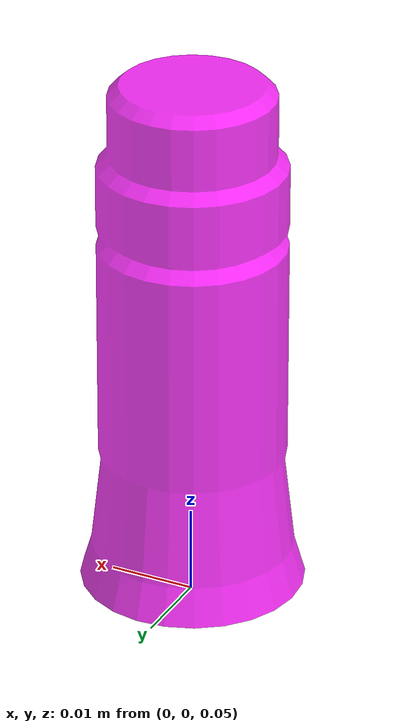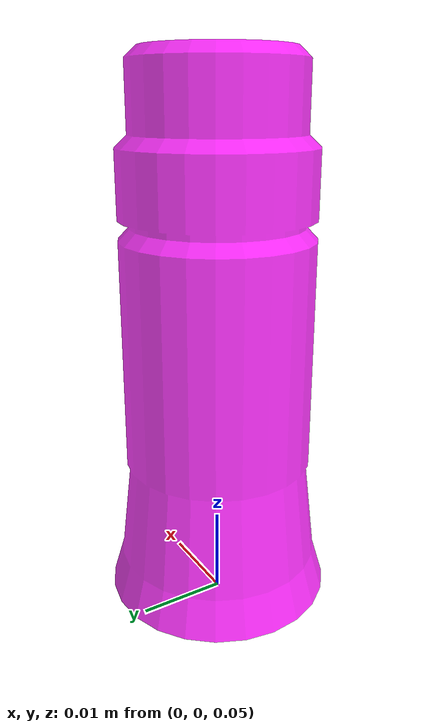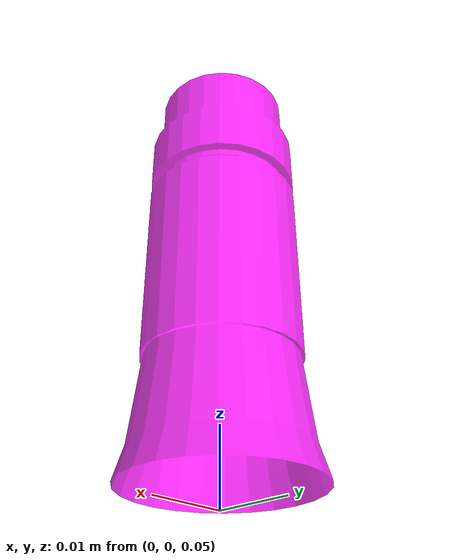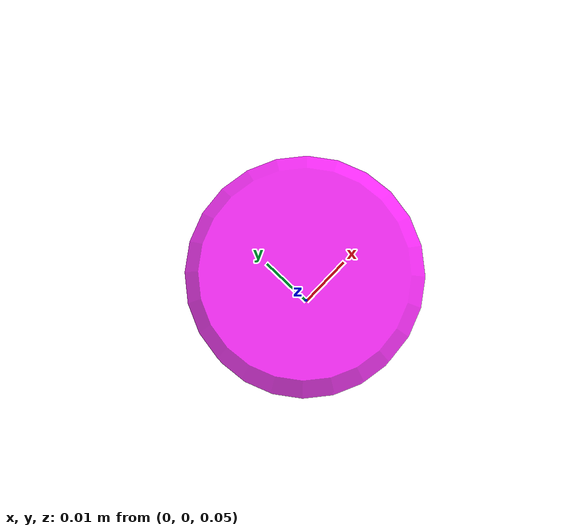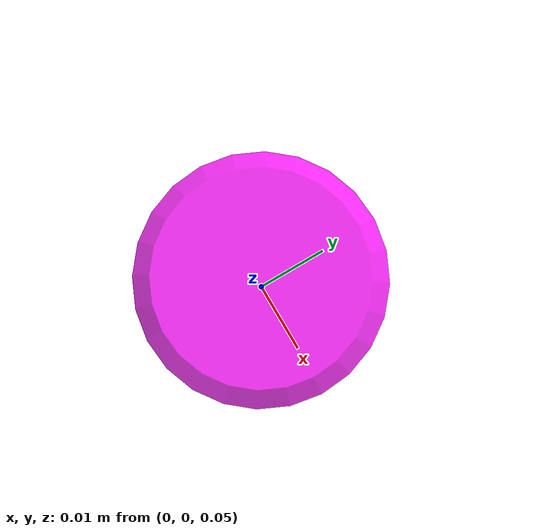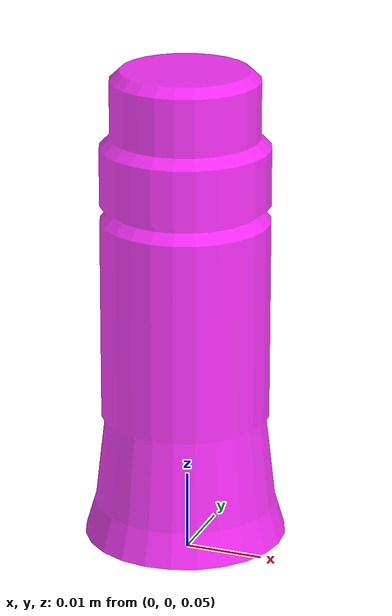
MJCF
<mujoco model="bottom_watertight_tiny">
  <default>
    <default group="2" type="mesh" contype="0" conaffinity="0">
      <geom group="2" type="mesh" contype="0" conaffinity="0"/>
    </default>
    <default group="3" type="mesh">
      <geom group="3" type="mesh"/>
    </default>
  </default>
  <asset>
    <mesh file="bottom_watertight_tiny.obj"/>
    <mesh file="bottom_watertight_tiny_collision_0.obj"/>
    <mesh file="bottom_watertight_tiny_collision_1.obj"/>
    <mesh file="bottom_watertight_tiny_collision_2.obj"/>
    <mesh file="bottom_watertight_tiny_collision_3.obj"/>
    <mesh file="bottom_watertight_tiny_collision_4.obj"/>
    <mesh file="bottom_watertight_tiny_collision_5.obj"/>
    <mesh file="bottom_watertight_tiny_collision_6.obj"/>
    <mesh file="bottom_watertight_tiny_collision_7.obj"/>
    <mesh file="bottom_watertight_tiny_collision_8.obj"/>
    <mesh file="bottom_watertight_tiny_collision_9.obj"/>
    <mesh file="bottom_watertight_tiny_collision_10.obj"/>
    <mesh file="bottom_watertight_tiny_collision_11.obj"/>
    <mesh file="bottom_watertight_tiny_collision_12.obj"/>
    <mesh file="bottom_watertight_tiny_collision_13.obj"/>
    <mesh file="bottom_watertight_tiny_collision_14.obj"/>
    <mesh file="bottom_watertight_tiny_collision_15.obj"/>
    <mesh file="bottom_watertight_tiny_collision_16.obj"/>
    <mesh file="bottom_watertight_tiny_collision_17.obj"/>
    <mesh file="bottom_watertight_tiny_collision_18.obj"/>
    <mesh file="bottom_watertight_tiny_collision_19.obj"/>
    <mesh file="bottom_watertight_tiny_collision_20.obj"/>
    <mesh file="bottom_watertight_tiny_collision_21.obj"/>
    <mesh file="bottom_watertight_tiny_collision_22.obj"/>
    <mesh file="bottom_watertight_tiny_collision_23.obj"/>
    <mesh file="bottom_watertight_tiny_collision_24.obj"/>
    <mesh file="bottom_watertight_tiny_collision_25.obj"/>
    <mesh file="bottom_watertight_tiny_collision_26.obj"/>
    <mesh file="bottom_watertight_tiny_collision_27.obj"/>
    <mesh file="bottom_watertight_tiny_collision_28.obj"/>
    <mesh file="bottom_watertight_tiny_collision_29.obj"/>
    <mesh file="bottom_watertight_tiny_collision_30.obj"/>
    <mesh file="bottom_watertight_tiny_collision_31.obj"/>
    <mesh file="bottom_watertight_tiny_collision_32.obj"/>
    <mesh file="bottom_watertight_tiny_collision_33.obj"/>
    <mesh file="bottom_watertight_tiny_collision_34.obj"/>
    <mesh file="bottom_watertight_tiny_collision_35.obj"/>
    <mesh file="bottom_watertight_tiny_collision_36.obj"/>
    <mesh file="bottom_watertight_tiny_collision_37.obj"/>
    <mesh file="bottom_watertight_tiny_collision_38.obj"/>
    <mesh file="bottom_watertight_tiny_collision_39.obj"/>
    <mesh file="bottom_watertight_tiny_collision_40.obj"/>
    <mesh file="bottom_watertight_tiny_collision_41.obj"/>
    <mesh file="bottom_watertight_tiny_collision_42.obj"/>
    <mesh file="bottom_watertight_tiny_collision_43.obj"/>
    <mesh file="bottom_watertight_tiny_collision_44.obj"/>
    <mesh file="bottom_watertight_tiny_collision_45.obj"/>
    <mesh file="bottom_watertight_tiny_collision_46.obj"/>
    <mesh file="bottom_watertight_tiny_collision_47.obj"/>
    <mesh file="bottom_watertight_tiny_collision_48.obj"/>
    <mesh file="bottom_watertight_tiny_collision_49.obj"/>
    <mesh file="bottom_watertight_tiny_collision_50.obj"/>
    <mesh file="bottom_watertight_tiny_collision_51.obj"/>
    <mesh file="bottom_watertight_tiny_collision_52.obj"/>
    <mesh file="bottom_watertight_tiny_collision_53.obj"/>
  </asset>
  <worldbody>
    <body name="bottom_watertight_tiny">
      <freejoint/>
      <geom mesh="bottom_watertight_tiny" group="2" type="mesh" rgba="1 0 1 0.8" contype="0" conaffinity="0"/>
      <geom mesh="bottom_watertight_tiny_collision_0" rgba="0.12470216132765499 0.788555654370912 0.3075269739890024 1" group="3" type="mesh"/>
      <geom mesh="bottom_watertight_tiny_collision_1" rgba="0.6711293026936834 0.75896064071528 0.02782121680353411 1" group="3" type="mesh"/>
      <geom mesh="bottom_watertight_tiny_collision_2" rgba="0.6546042916885025 0.4369701719363117 0.14714436414242438 1" group="3" type="mesh"/>
      <geom mesh="bottom_watertight_tiny_collision_3" rgba="0.5127584918432047 0.54043948627252 0.20084696290939397 1" group="3" type="mesh"/>
      <geom mesh="bottom_watertight_tiny_collision_4" rgba="0.6264983097299685 0.09828708071870595 0.3041060840301615 1" group="3" type="mesh"/>
      <geom mesh="bottom_watertight_tiny_collision_5" rgba="0.856443148861024 0.1418063934995616 0.13580500171659982 1" group="3" type="mesh"/>
      <geom mesh="bottom_watertight_tiny_collision_6" rgba="0.6764838107471808 0.964396499832098 0.8258184150474928 1" group="3" type="mesh"/>
      <geom mesh="bottom_watertight_tiny_collision_7" rgba="0.7113568973194032 0.6557566510867947 0.06740293883608162 1" group="3" type="mesh"/>
      <geom mesh="bottom_watertight_tiny_collision_8" rgba="0.53256186395011 0.6186597267940159 0.6418871900527298 1" group="3" type="mesh"/>
      <geom mesh="bottom_watertight_tiny_collision_9" rgba="0.4531115554810463 0.05228343547159553 0.8135691639074789 1" group="3" type="mesh"/>
      <geom mesh="bottom_watertight_tiny_collision_10" rgba="0.9440513106460834 0.4815023434407061 0.9742085302180635 1" group="3" type="mesh"/>
      <geom mesh="bottom_watertight_tiny_collision_11" rgba="0.37063885619093606 0.028895078520429607 0.5466262512358696 1" group="3" type="mesh"/>
      <geom mesh="bottom_watertight_tiny_collision_12" rgba="0.3353506632519452 0.6253023460383373 0.3913038983323851 1" group="3" type="mesh"/>
      <geom mesh="bottom_watertight_tiny_collision_13" rgba="0.4522255477967263 0.02342684546130258 0.8183528664521823 1" group="3" type="mesh"/>
      <geom mesh="bottom_watertight_tiny_collision_14" rgba="0.11203555258211906 0.8842721279049731 0.8586485753283908 1" group="3" type="mesh"/>
      <geom mesh="bottom_watertight_tiny_collision_15" rgba="0.06415419151858992 0.997280761307918 0.39480205006115265 1" group="3" type="mesh"/>
      <geom mesh="bottom_watertight_tiny_collision_16" rgba="0.08343031546975632 0.2106696294488115 0.962733579402605 1" group="3" type="mesh"/>
      <geom mesh="bottom_watertight_tiny_collision_17" rgba="0.9042445249245988 0.8912878027352642 0.8837472088376294 1" group="3" type="mesh"/>
      <geom mesh="bottom_watertight_tiny_collision_18" rgba="0.12500599334738227 0.5892374156880836 0.7283491833219028 1" group="3" type="mesh"/>
      <geom mesh="bottom_watertight_tiny_collision_19" rgba="0.3002497091838576 0.7152437604734228 0.6242386995301629 1" group="3" type="mesh"/>
      <geom mesh="bottom_watertight_tiny_collision_20" rgba="0.8988226822241002 0.5541728534280164 0.8738779376264127 1" group="3" type="mesh"/>
      <geom mesh="bottom_watertight_tiny_collision_21" rgba="0.6964586694106787 0.07278092716072393 0.5538863877702058 1" group="3" type="mesh"/>
      <geom mesh="bottom_watertight_tiny_collision_22" rgba="0.0885333459959674 0.7915218807268493 0.8064012368068467 1" group="3" type="mesh"/>
      <geom mesh="bottom_watertight_tiny_collision_23" rgba="0.3087755734659551 0.488943372371464 0.7211683812447898 1" group="3" type="mesh"/>
      <geom mesh="bottom_watertight_tiny_collision_24" rgba="0.17971477540273417 0.014200865762176718 0.9552357154959416 1" group="3" type="mesh"/>
      <geom mesh="bottom_watertight_tiny_collision_25" rgba="0.990971616962201 0.2746036337124833 0.3954810408679048 1" group="3" type="mesh"/>
      <geom mesh="bottom_watertight_tiny_collision_26" rgba="0.8160620872796662 0.5327916559964347 0.6015301725098761 1" group="3" type="mesh"/>
      <geom mesh="bottom_watertight_tiny_collision_27" rgba="0.8266158611597945 0.8402882489481804 0.623980103915394 1" group="3" type="mesh"/>
      <geom mesh="bottom_watertight_tiny_collision_28" rgba="0.18347671175916858 0.46620021207834195 0.6475075118835091 1" group="3" type="mesh"/>
      <geom mesh="bottom_watertight_tiny_collision_29" rgba="0.9409919372644951 0.28525010717079624 0.01819206873468071 1" group="3" type="mesh"/>
      <geom mesh="bottom_watertight_tiny_collision_30" rgba="0.5931399036669018 0.5836807325799213 0.15716754737286154 1" group="3" type="mesh"/>
      <geom mesh="bottom_watertight_tiny_collision_31" rgba="0.0190133949896355 0.708581122958618 0.6649805687980558 1" group="3" type="mesh"/>
      <geom mesh="bottom_watertight_tiny_collision_32" rgba="0.44084745810003256 0.9846733154739282 0.07372666701788444 1" group="3" type="mesh"/>
      <geom mesh="bottom_watertight_tiny_collision_33" rgba="0.3257296756027753 0.7262684975423467 0.7296469809036934 1" group="3" type="mesh"/>
      <geom mesh="bottom_watertight_tiny_collision_34" rgba="0.244119153663653 0.19022954797402314 0.7567710766778629 1" group="3" type="mesh"/>
      <geom mesh="bottom_watertight_tiny_collision_35" rgba="0.8995249847796548 0.31116282587507305 0.964860732401457 1" group="3" type="mesh"/>
      <geom mesh="bottom_watertight_tiny_collision_36" rgba="0.13942878069609832 0.7759329708298478 0.8979589683406929 1" group="3" type="mesh"/>
      <geom mesh="bottom_watertight_tiny_collision_37" rgba="0.22847710588294012 0.4937844788833241 0.6897284235684432 1" group="3" type="mesh"/>
      <geom mesh="bottom_watertight_tiny_collision_38" rgba="0.3052889955656659 0.5903297397199366 0.9703490954950963 1" group="3" type="mesh"/>
      <geom mesh="bottom_watertight_tiny_collision_39" rgba="0.9301468029103406 0.18063048106835755 0.8815794339854961 1" group="3" type="mesh"/>
      <geom mesh="bottom_watertight_tiny_collision_40" rgba="0.7606020193284553 0.686174643818717 0.48812409664524226 1" group="3" type="mesh"/>
      <geom mesh="bottom_watertight_tiny_collision_41" rgba="0.2960724666297896 0.7353320076665462 0.7677567746422215 1" group="3" type="mesh"/>
      <geom mesh="bottom_watertight_tiny_collision_42" rgba="0.9427872661526596 0.877936950631131 0.3260681249018015 1" group="3" type="mesh"/>
      <geom mesh="bottom_watertight_tiny_collision_43" rgba="0.84414678895829 0.5265084068154968 0.7091294299046815 1" group="3" type="mesh"/>
      <geom mesh="bottom_watertight_tiny_collision_44" rgba="0.5514944357306155 0.11045522100179328 0.06467118903608793 1" group="3" type="mesh"/>
      <geom mesh="bottom_watertight_tiny_collision_45" rgba="0.10445516847763603 0.7731972254208167 0.845233749196234 1" group="3" type="mesh"/>
      <geom mesh="bottom_watertight_tiny_collision_46" rgba="0.4524094351513155 0.7583920372844274 0.27964278071900306 1" group="3" type="mesh"/>
      <geom mesh="bottom_watertight_tiny_collision_47" rgba="0.376280788120837 0.4782681770770637 0.1716825571559838 1" group="3" type="mesh"/>
      <geom mesh="bottom_watertight_tiny_collision_48" rgba="0.4527580699615612 0.6633010724629292 0.7421298797587321 1" group="3" type="mesh"/>
      <geom mesh="bottom_watertight_tiny_collision_49" rgba="0.6623787351551653 0.4390916666441089 0.04598110006521006 1" group="3" type="mesh"/>
      <geom mesh="bottom_watertight_tiny_collision_50" rgba="0.027065253233853004 0.05589378174637827 0.834266728430844 1" group="3" type="mesh"/>
      <geom mesh="bottom_watertight_tiny_collision_51" rgba="0.4920384563791045 0.8183224481989386 0.542100871880276 1" group="3" type="mesh"/>
      <geom mesh="bottom_watertight_tiny_collision_52" rgba="0.3030506972935363 0.42268188890028413 0.6894389169978405 1" group="3" type="mesh"/>
      <geom mesh="bottom_watertight_tiny_collision_53" rgba="0.7399458745667906 0.11946374570835994 0.39963971640131957 1" group="3" type="mesh"/>
    </body>
  </worldbody>
</mujoco>
